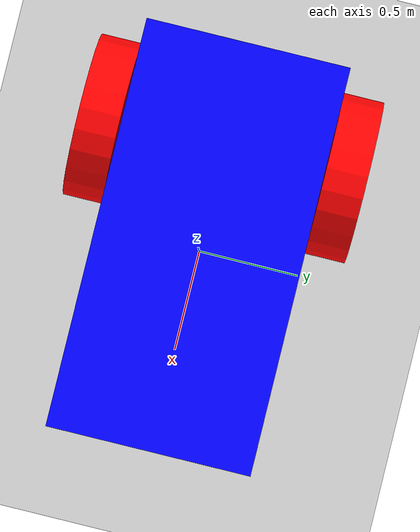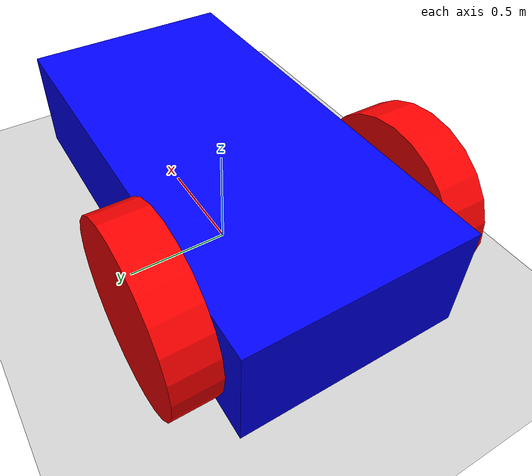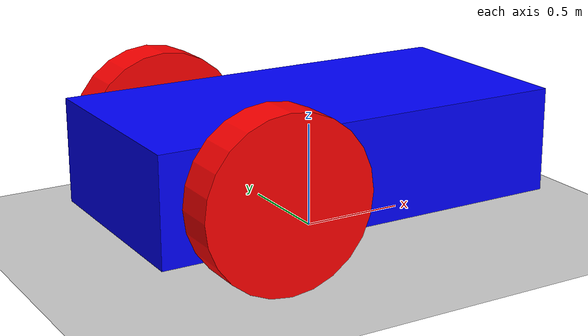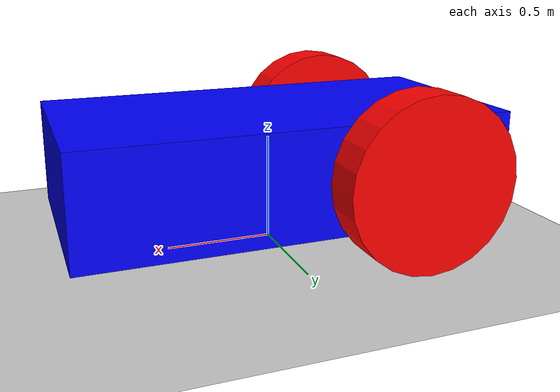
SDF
<?xml version="1.0" ?>
<sdf version="1.10">
    <world name="car_world">

        <light type="directional" name="sun">
            <cast_shadows>true</cast_shadows>
            <pose>0 0 10 0 0 0</pose>
            <diffuse>0.8 0.8 0.8 1</diffuse>
            <specular>0.2 0.2 0.2 1</specular>
            <attenuation>
                <range>1000</range>
                <constant>0.9</constant>
                <linear>0.01</linear>
                <quadratic>0.001</quadratic>
            </attenuation>
            <direction>-0.5 0.1 -0.9</direction>
        </light>

        <model name="ground_plane">
            <static>true</static>
            <link name="link">
                <collision name="collision">
                <geometry>
                    <plane>
                    <normal>0 0 1</normal>
                    </plane>
                </geometry>
                </collision>
                <visual name="visual">
                <geometry>
                    <plane>
                    <normal>0 0 1</normal>
                    <size>100 100</size>
                    </plane>
                </geometry>
                <material>
                    <ambient>0.8 0.8 0.8 1</ambient>
                    <diffuse>0.8 0.8 0.8 1</diffuse>
                    <specular>0.8 0.8 0.8 1</specular>
                </material>
                </visual>
            </link>
        </model>

        <model name='gz_robot'>
            <self_collide>true</self_collide>
            <pose>0 0 0 0 0 0</pose>
            <include merge="true">
                <uri>model://gz_robot</uri>
            </include>

            <plugin
                filename="gz-sim-joint-state-publisher-system"
                name="gz::sim::systems::JointStatePublisher">
            </plugin>

            <plugin
                filename="gz-sim-pose-publisher-system"
                name="gz::sim::systems::PosePublisher">
                <publish_link_pose>true</publish_link_pose>
                <use_pose_vector_msg>true</use_pose_vector_msg>
                <static_publisher>true</static_publisher>
                <static_update_frequency>1</static_update_frequency>
            </plugin>

            <plugin
                filename="gz-sim-odometry-publisher-system"
                name="gz::sim::systems::OdometryPublisher">
                <odom_frame>odom</odom_frame>
                <robot_base_frame>chassis</robot_base_frame>
            </plugin>

        </model>
    </world>
</sdf>

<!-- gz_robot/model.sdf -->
<sdf version="1.10">
    <model name='gz_robot' canonical_link="chassis">
        <!--chassis-->
        <link name='chassis'>
            <pose>0 0 0.4 0 0 0</pose>
            <inertial>
                <mass>1.14395</mass>
                <inertia>
                    <ixx>0.126164</ixx>
                    <ixy>0</ixy>
                    <ixz>0</ixz>
                    <iyy>0.416519</iyy>
                    <iyz>0</iyz>
                    <izz>0.481014</izz>
                </inertia>
            </inertial>
            <visual name='visual_chassis'>
                <geometry>
                    <box>
                        <size>2.0 1.0 0.5</size>
                    </box>
                </geometry>
                <!--Color of the link-->
                <material>
                    <ambient>0.0 0.0 1.0 1</ambient>
                    <diffuse>0.0 0.0 1.0 1</diffuse>
                    <specular>0.0 0.0 1.0 1</specular>
                </material>
            </visual>
            <collision name='collision_chassis'>
                <geometry>
                    <box>
                        <size>2.0 1.0 0.5</size>
                    </box>
                </geometry>
            </collision>
        </link>

        <!--Left wheel-->
        <link name='left_wheel'>
            <pose>-0.5 0.6 0.4 -1.5707 0 0</pose> <!--angles are in radian-->
            <inertial>
                <mass>2</mass>
                <inertia>
                    <ixx>0.145833</ixx>
                    <ixy>0</ixy>
                    <ixz>0</ixz>
                    <iyy>0.145833</iyy>
                    <iyz>0</iyz>
                    <izz>0.125</izz>
                </inertia>
            </inertial>
            <visual name='visual_left_wheel'>
                <geometry>
                    <cylinder>
                        <radius>0.4</radius>
                        <length>0.2</length>
                    </cylinder>
                </geometry>
                <material>
                    <ambient>1.0 0.0 0.0 1</ambient>
                    <diffuse>1.0 0.0 0.0 1</diffuse>
                    <specular>1.0 0.0 0.0 1</specular>
                </material>
            </visual>
            <collision name='collision_left_wheel'>
                <geometry>
                    <cylinder>
                        <radius>0.4</radius>
                        <length>0.2</length>
                    </cylinder>
                </geometry>
            </collision>
        </link>

        <!--The same as left wheel but with different position-->
        <link name='right_wheel'>
            <pose>-0.5 -0.6 0.4 -1.5707 0 0</pose> <!--angles are in radian-->
            <inertial>
                <mass>2</mass>
                <inertia>
                    <ixx>0.145833</ixx>
                    <ixy>0</ixy>
                    <ixz>0</ixz>
                    <iyy>0.145833</iyy>
                    <iyz>0</iyz>
                    <izz>0.125</izz>
                </inertia>
            </inertial>
            <visual name='visual_right_wheel'>
                <geometry>
                    <cylinder>
                        <radius>0.4</radius>
                        <length>0.2</length>
                    </cylinder>
                </geometry>
                <material>
                    <ambient>1.0 0.0 0.0 1</ambient>
                    <diffuse>1.0 0.0 0.0 1</diffuse>
                    <specular>1.0 0.0 0.0 1</specular>
                </material>
            </visual>
            <collision name='collision_right_wheel'>
                <geometry>
                    <cylinder>
                        <radius>0.4</radius>
                        <length>0.2</length>
                    </cylinder>
                </geometry>
            </collision>
        </link>

       <joint name='left_wheel_joint' type='revolute'>
        <parent>chassis</parent>
        <child>left_wheel</child>
        <axis>
          <xyz>0 0 1</xyz>
          <limit>
            <lower>-1.79769e+308</lower>
            <upper>1.79769e+308</upper>
          </limit>
        </axis>
      </joint>

      <joint name='right_wheel_joint' type='revolute'>
        <parent>chassis</parent>
        <child>right_wheel</child>
        <axis>
          <xyz>0 0 1</xyz>
          <limit>
            <lower>-1.79769e+308</lower>
            <upper>1.79769e+308</upper>
          </limit>
        </axis>
      </joint>
    </model>
</sdf>
